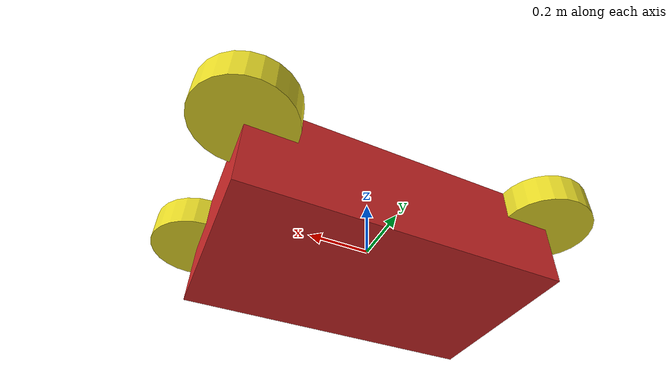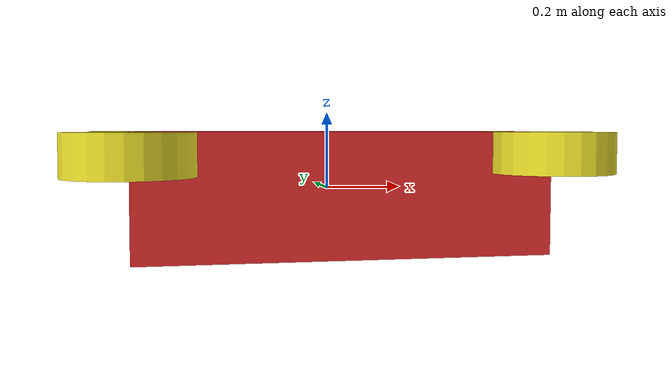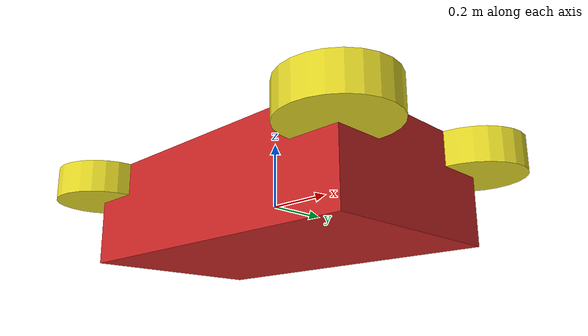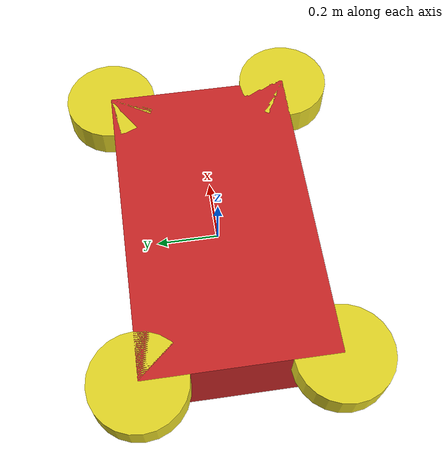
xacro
<?xml version="1.0"?>
<robot name="differential_drive_robot" xmlns:xacro="http://www.ros.org/wiki/xacro">

    <!-- Dimensions -->
    <xacro:property name="body_link_x_dim" value="1" />
    <xacro:property name="body_link_y_dim" value="0.6" />
    <xacro:property name="body_link_z_dim" value="0.3" />

    <xacro:property name="wheel_link_radius" value="0.15" />
    <xacro:property name="wheel_link_length" value="0.1" />
    <xacro:property name="wheel_link_z_location" value="0.1" />

    <!-- Density (Aluminum) -->
    <xacro:property name="body_density" value="2710.0" />
    <xacro:property name="wheel_density" value="2710.0" />

    <xacro:property name="pi_const" value="3.14159265" />

    <!-- Mass -->
    <xacro:property name="body_mass"
        value="${body_density*body_link_x_dim*body_link_y_dim*body_link_z_dim}" />
    <xacro:property name="wheel_mass"
        value="${wheel_density*pi_const*wheel_link_radius*wheel_link_length}" />

    <!-- Moments of inertia -->
    <xacro:property name="Iz_wheel" value="${0.5*wheel_mass*wheel_link_radius*wheel_link_radius}" />
    <xacro:property name="I_wheel"
        value="${(1.0/12.0)*wheel_mass*(3.0*wheel_link_radius*wheel_link_radius+wheel_link_length*wheel_link_length)}" />

    <xacro:macro name="inertia_wheel">
        <inertial>
            <origin xyz="0.0 0.0 0.0" rpy="0.0 0.0 0.0" />
            <mass value="${wheel_mass}" />
            <inertia ixx="${I_wheel}" ixy="0.0" ixz="0.0" iyy="${I_wheel}" iyz="0.0"
                izz="${Iz_wheel}" />
        </inertial>
    </xacro:macro>

    <xacro:include filename="$(find robot_model)/urdf/robot.gazebo" />

    <!-- dummy link to make gazebo happy -->
    <link name="dummy">
    </link>
    <joint name="dummy_joint" type="fixed">
        <parent link="dummy" />
        <child link="body_link" />
    </joint>

    <!-- Body Link  -->
    <link name="body_link">
        <visual>
            <geometry>
                <box size="${body_link_x_dim} ${body_link_y_dim} ${body_link_z_dim}" />
            </geometry>
            <origin rpy="0 0 0" xyz="0 0 0" />
        </visual>
        <collision>
            <geometry>
                <box size="${body_link_x_dim} ${body_link_y_dim} ${body_link_z_dim}" />
            </geometry>
            <origin rpy="0 0 0" xyz="0 0 0" />
        </collision>
        <inertial>
            <origin rpy="0 0 0" xyz="0 0 0" />
            <mass value="${body_mass}" />
            <inertia
                ixx="${(1/12)*body_mass*(body_link_y_dim*body_link_y_dim+body_link_z_dim*body_link_z_dim)}"
                ixy="0"
                ixz="0"
                iyy="${(1/12)*body_mass*(body_link_x_dim*body_link_x_dim+body_link_z_dim*body_link_z_dim)}"
                iyz="0"
                izz="${(1/12)*body_mass*(body_link_y_dim*body_link_y_dim+body_link_x_dim*body_link_x_dim)}"
            />
        </inertial>
    </link>

    <!-- Wheel 1 (Front Left) -->
    <joint name="wheel1_joint" type="continuous">
        <parent link="body_link" />
        <child link="wheel1_link" />
        <origin
            xyz="${-body_link_x_dim/2} ${body_link_y_dim/2} ${wheel_link_z_location}"
            rpy="0 0 0" />
        <axis xyz="0 1 0" />
        <limit effort="1000" velocity="1000" />
        <dynamics damping="1.0" friction="1.0" />
    </joint>

    <link name="wheel1_link">
        <visual>
            <origin rpy="0 0 0" xyz="0 0 0" />
            <geometry>
                <cylinder length="${wheel_link_length}" radius="${wheel_link_radius}" />
            </geometry>
        </visual>
        <collision>
            <origin rpy="0 0 0" xyz="0 0 0" />
            <geometry>
                <cylinder length="${wheel_link_length}" radius="${wheel_link_radius}" />
            </geometry>
        </collision>
        <xacro:inertia_wheel />
    </link>

    <!-- Wheel 2 (Front Right) -->
    <joint name="wheel2_joint" type="continuous">
        <parent link="body_link" />
        <child link="wheel2_link" />
        <origin
            xyz="${-body_link_x_dim/2} ${-body_link_y_dim/2} ${wheel_link_z_location}"
            rpy="0 0 0" />
        <axis xyz="0 1 0" />
        <limit effort="1000" velocity="1000" />
        <dynamics damping="1.0" friction="1.0" />
    </joint>

    <link name="wheel2_link">
        <visual>
            <origin rpy="0 0 0" xyz="0 0 0" />
            <geometry>
                <cylinder length="${wheel_link_length}" radius="${wheel_link_radius}" />
            </geometry>
        </visual>
        <collision>
            <origin rpy="0 0 0" xyz="0 0 0" />
            <geometry>
                <cylinder length="${wheel_link_length}" radius="${wheel_link_radius}" />
            </geometry>
        </collision>
        <xacro:inertia_wheel />
    </link>
    <!-- Wheel 3 (Rear Left) -->
<joint name="wheel3_joint" type="continuous">
    <parent link="body_link" />
    <child link="wheel3_link" />
    <origin
        xyz="${body_link_x_dim/2} ${body_link_y_dim/2} ${wheel_link_z_location}"
        rpy="0 0 0" />
    <axis xyz="0 1 0" />
    <limit effort="1000" velocity="1000" />
    <dynamics damping="1.0" friction="1.0" />
</joint>

<link name="wheel3_link">
    <visual>
        <origin rpy="0 0 0" xyz="0 0 0" />
        <geometry>
            <cylinder length="${wheel_link_length}" radius="${wheel_link_radius}" />
        </geometry>
    </visual>
    <collision>
        <origin rpy="0 0 0" xyz="0 0 0" />
        <geometry>
            <cylinder length="${wheel_link_length}" radius="${wheel_link_radius}" />
        </geometry>
    </collision>
    <xacro:inertia_wheel />
</link>

<!-- Wheel 4 (Rear Right) -->
<joint name="wheel4_joint" type="continuous">
    <parent link="body_link" />
    <child link="wheel4_link" />
    <origin
        xyz="${body_link_x_dim/2} ${-body_link_y_dim/2} ${wheel_link_z_location}"
        rpy="0 0 0" />
    <axis xyz="0 1 0" />
    <limit effort="1000" velocity="1000" />
    <dynamics damping="1.0" friction="1.0" />
</joint>

<link name="wheel4_link">
    <visual>
        <origin rpy="0 0 0" xyz="0 0 0" />
        <geometry>
            <cylinder length="${wheel_link_length}" radius="${wheel_link_radius}" />
        </geometry>
    </visual>
    <collision>
        <origin rpy="0 0 0" xyz="0 0 0" />
        <geometry>
            <cylinder length="${wheel_link_length}" radius="${wheel_link_radius}" />
        </geometry>
    </collision>
    <xacro:inertia_wheel />
</link>
</robot>
